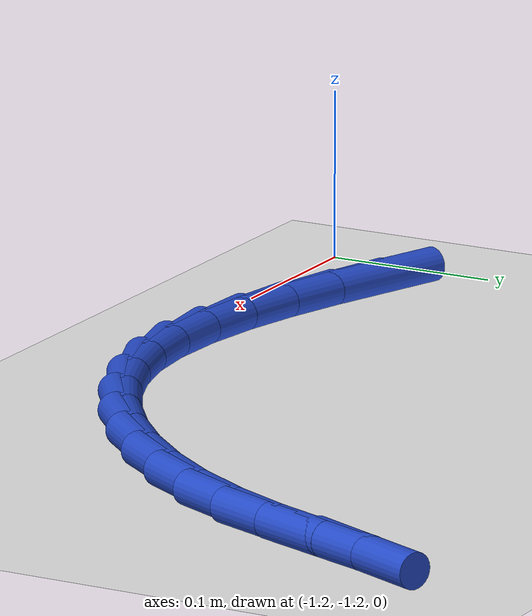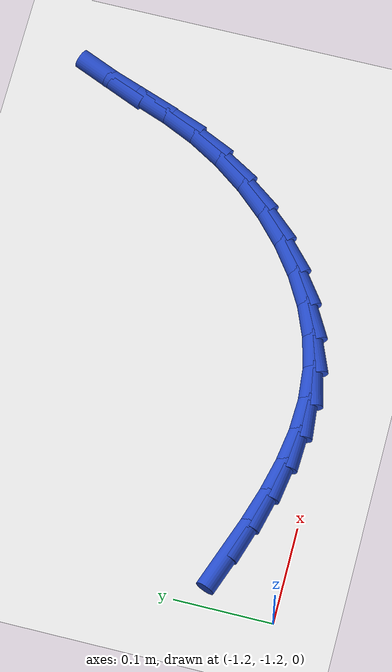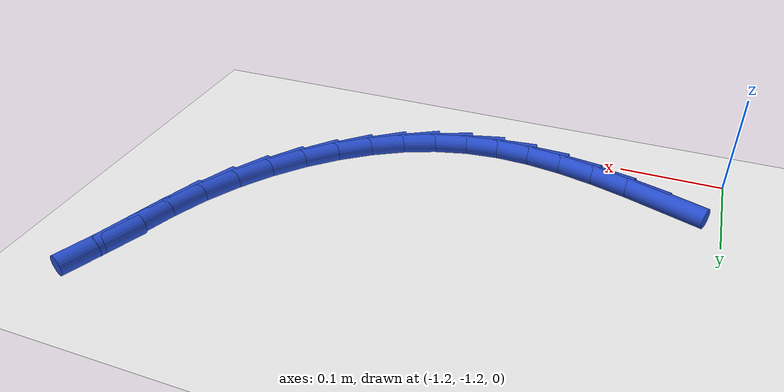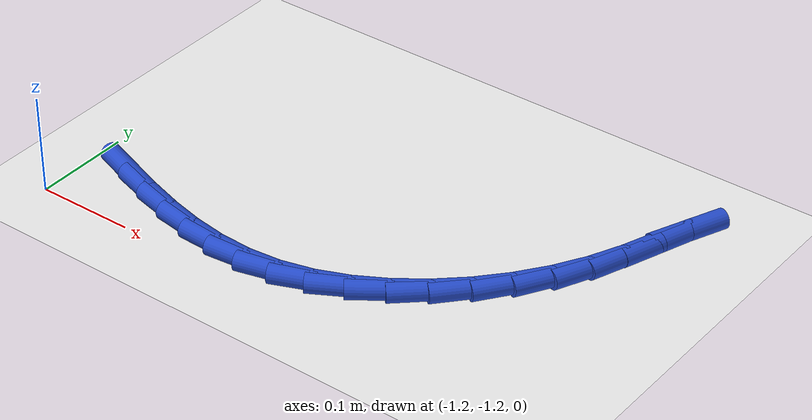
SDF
<sdf version="1.6">
 <world name="default">
  <model name="ground_plane">
   <static>1</static>
   <link name="link">
    <collision name="collision">
     <geometry><plane><normal>0 0 1</normal><size>100 100</size></plane></geometry>
     <surface><friction><ode><mu>100</mu><mu2>50</mu2></ode></friction></surface>
    </collision>
    <visual name="visual">
     <cast_shadows>0</cast_shadows>
     <geometry><plane><normal>0 0 1</normal><size>100 100</size></plane></geometry>
     <material>
      <script><uri>file://media/materials/scripts/gazebo.material</uri><name>Gazebo/WhiteGlow</name></script>
     </material>
    </visual>
   </link>
  </model>
  <model name="line">
   <link name="link_158">
    <pose>-1.1466011325694792 -1.1408361036494592 0.01 0 1.57 -0.3425314762883452</pose>
    <collision name="collision">
     <geometry><cylinder><radius>0.01</radius><length>0.08</length></cylinder></geometry>
    </collision>
    <visual name="visual">
     <material>
      <script><name>Gazebo/Blue</name><uri>file://media/materials/scripts/gazebo.material</uri></script>
     </material>
     <geometry><cylinder><radius>0.01</radius><length>0.08</length></cylinder></geometry>
    </visual>
   </link>
   <link name="link_159">
    <pose>-1.111353206773709 -1.1534050796036586 0.01 0 1.57 -0.2977894752207997</pose>
    <collision name="collision">
     <geometry><cylinder><radius>0.01</radius><length>0.08</length></cylinder></geometry>
    </collision>
    <visual name="visual">
     <material>
      <script><name>Gazebo/Blue</name><uri>file://media/materials/scripts/gazebo.material</uri></script>
     </material>
     <geometry><cylinder><radius>0.01</radius><length>0.08</length></cylinder></geometry>
    </visual>
   </link>
   <link name="link_160">
    <pose>-1.0762647187720105 -1.1641742928370986 0.01 0 1.57 -0.23334600104690353</pose>
    <collision name="collision">
     <geometry><cylinder><radius>0.01</radius><length>0.08</length></cylinder></geometry>
    </collision>
    <visual name="visual">
     <material>
      <script><name>Gazebo/Blue</name><uri>file://media/materials/scripts/gazebo.material</uri></script>
     </material>
     <geometry><cylinder><radius>0.01</radius><length>0.08</length></cylinder></geometry>
    </visual>
   </link>
   <link name="link_161">
    <pose>-1.041416995927592 -1.1724567456480888 0.01 0 1.57 -0.14690224786187986</pose>
    <collision name="collision">
     <geometry><cylinder><radius>0.01</radius><length>0.08</length></cylinder></geometry>
    </collision>
    <visual name="visual">
     <material>
      <script><name>Gazebo/Blue</name><uri>file://media/materials/scripts/gazebo.material</uri></script>
     </material>
     <geometry><cylinder><radius>0.01</radius><length>0.08</length></cylinder></geometry>
    </visual>
   </link>
   <link name="link_162">
    <pose>-1.006891365603664 -1.1775654403349396 0.01 0 1.57 -0.036556333677344725</pose>
    <collision name="collision">
     <geometry><cylinder><radius>0.01</radius><length>0.08</length></cylinder></geometry>
    </collision>
    <visual name="visual">
     <material>
      <script><name>Gazebo/Blue</name><uri>file://media/materials/scripts/gazebo.material</uri></script>
     </material>
     <geometry><cylinder><radius>0.01</radius><length>0.08</length></cylinder></geometry>
    </visual>
   </link>
   <link name="link_163">
    <pose>-0.9727691551634355 -1.1788133791959599 0.01 0 1.57 0.09778650981073674</pose>
    <collision name="collision">
     <geometry><cylinder><radius>0.01</radius><length>0.08</length></cylinder></geometry>
    </collision>
    <visual name="visual">
     <material>
      <script><name>Gazebo/Blue</name><uri>file://media/materials/scripts/gazebo.material</uri></script>
     </material>
     <geometry><cylinder><radius>0.01</radius><length>0.08</length></cylinder></geometry>
    </visual>
   </link>
   <link name="link_164">
    <pose>-0.9391316919701158 -1.1755135645294592 0.01 0 1.57 0.2483774218174454</pose>
    <collision name="collision">
     <geometry><cylinder><radius>0.01</radius><length>0.08</length></cylinder></geometry>
    </collision>
    <visual name="visual">
     <material>
      <script><name>Gazebo/Blue</name><uri>file://media/materials/scripts/gazebo.material</uri></script>
     </material>
     <geometry><cylinder><radius>0.01</radius><length>0.08</length></cylinder></geometry>
    </visual>
   </link>
   <link name="link_165">
    <pose>-0.9060995279854208 -1.1671361365050956 0.01 0 1.57 0.3900303836452335</pose>
    <collision name="collision">
     <geometry><cylinder><radius>0.01</radius><length>0.08</length></cylinder></geometry>
    </collision>
    <visual name="visual">
     <material>
      <script><name>Gazebo/Blue</name><uri>file://media/materials/scripts/gazebo.material</uri></script>
     </material>
     <geometry><cylinder><radius>0.01</radius><length>0.08</length></cylinder></geometry>
    </visual>
   </link>
   <link name="link_166">
    <pose>-0.8739890655685282 -1.1539358326047506 0.01 0 1.57 0.5171269410074749</pose>
    <collision name="collision">
     <geometry><cylinder><radius>0.01</radius><length>0.08</length></cylinder></geometry>
    </collision>
    <visual name="visual">
     <material>
      <script><name>Gazebo/Blue</name><uri>file://media/materials/scripts/gazebo.material</uri></script>
     </material>
     <geometry><cylinder><radius>0.01</radius><length>0.08</length></cylinder></geometry>
    </visual>
   </link>
   <link name="link_167">
    <pose>-0.8431777106800011 -1.1364117771601807 0.01 0 1.57 0.632370800924834</pose>
    <collision name="collision">
     <geometry><cylinder><radius>0.01</radius><length>0.08</length></cylinder></geometry>
    </collision>
    <visual name="visual">
     <material>
      <script><name>Gazebo/Blue</name><uri>file://media/materials/scripts/gazebo.material</uri></script>
     </material>
     <geometry><cylinder><radius>0.01</radius><length>0.08</length></cylinder></geometry>
    </visual>
   </link>
   <link name="link_168">
    <pose>-0.8140428890251251 -1.115063173602577 0.01 0 1.57 0.738925546812718</pose>
    <collision name="collision">
     <geometry><cylinder><radius>0.01</radius><length>0.08</length></cylinder></geometry>
    </collision>
    <visual name="visual">
     <material>
      <script><name>Gazebo/Blue</name><uri>file://media/materials/scripts/gazebo.material</uri></script>
     </material>
     <geometry><cylinder><radius>0.01</radius><length>0.08</length></cylinder></geometry>
    </visual>
   </link>
   <link name="link_169">
    <pose>-0.786962026309185 -1.0903892253631284 0.01 0 1.57 0.8400060434005523</pose>
    <collision name="collision">
     <geometry><cylinder><radius>0.01</radius><length>0.08</length></cylinder></geometry>
    </collision>
    <visual name="visual">
     <material>
      <script><name>Gazebo/Blue</name><uri>file://media/materials/scripts/gazebo.material</uri></script>
     </material>
     <geometry><cylinder><radius>0.01</radius><length>0.08</length></cylinder></geometry>
    </visual>
   </link>
   <link name="link_170">
    <pose>-0.7623125482374653 -1.0628891358730252 0.01 0 1.57 0.938756111786205</pose>
    <collision name="collision">
     <geometry><cylinder><radius>0.01</radius><length>0.08</length></cylinder></geometry>
    </collision>
    <visual name="visual">
     <material>
      <script><name>Gazebo/Blue</name><uri>file://media/materials/scripts/gazebo.material</uri></script>
     </material>
     <geometry><cylinder><radius>0.01</radius><length>0.08</length></cylinder></geometry>
    </visual>
   </link>
   <link name="link_171">
    <pose>-0.7404718805152526 -1.0330621085634586 0.01 0 1.57 1.0382750455661396</pose>
    <collision name="collision">
     <geometry><cylinder><radius>0.01</radius><length>0.08</length></cylinder></geometry>
    </collision>
    <visual name="visual">
     <material>
      <script><name>Gazebo/Blue</name><uri>file://media/materials/scripts/gazebo.material</uri></script>
     </material>
     <geometry><cylinder><radius>0.01</radius><length>0.08</length></cylinder></geometry>
    </visual>
   </link>
   <link name="link_172">
    <pose>-0.7218174488478311 -1.0014073468656175 0.01 0 1.57 1.1403709373267543</pose>
    <collision name="collision">
     <geometry><cylinder><radius>0.01</radius><length>0.08</length></cylinder></geometry>
    </collision>
    <visual name="visual">
     <material>
      <script><name>Gazebo/Blue</name><uri>file://media/materials/scripts/gazebo.material</uri></script>
     </material>
     <geometry><cylinder><radius>0.01</radius><length>0.08</length></cylinder></geometry>
    </visual>
   </link>
   <link name="link_173">
    <pose>-0.7066794431594896 -0.9684367104592658 0.01 0 1.57 1.2149774135100317</pose>
    <collision name="collision">
     <geometry><cylinder><radius>0.01</radius><length>0.08</length></cylinder></geometry>
    </collision>
    <visual name="visual">
     <material>
      <script><name>Gazebo/Blue</name><uri>file://media/materials/scripts/gazebo.material</uri></script>
     </material>
     <geometry><cylinder><radius>0.01</radius><length>0.08</length></cylinder></geometry>
    </visual>
   </link>
   <link name="link_174">
    <pose>-0.6942416875769802 -0.9349692136892346 0.01 0 1.57 1.2275094924192989</pose>
    <collision name="collision">
     <geometry><cylinder><radius>0.01</radius><length>0.08</length></cylinder></geometry>
    </collision>
    <visual name="visual">
     <material>
      <script><name>Gazebo/Blue</name><uri>file://media/materials/scripts/gazebo.material</uri></script>
     </material>
     <geometry><cylinder><radius>0.01</radius><length>0.08</length></cylinder></geometry>
    </visual>
   </link>
   <link name="link_175">
    <pose>-0.6825073155712102 -0.9021402224904992 0.01 0 1.57 1.1719394968638817</pose>
    <collision name="collision">
     <geometry><cylinder><radius>0.01</radius><length>0.08</length></cylinder></geometry>
    </collision>
    <visual name="visual">
     <material>
      <script><name>Gazebo/Blue</name><uri>file://media/materials/scripts/gazebo.material</uri></script>
     </material>
     <geometry><cylinder><radius>0.01</radius><length>0.08</length></cylinder></geometry>
    </visual>
   </link>
  </model>
 </world>
</sdf>
